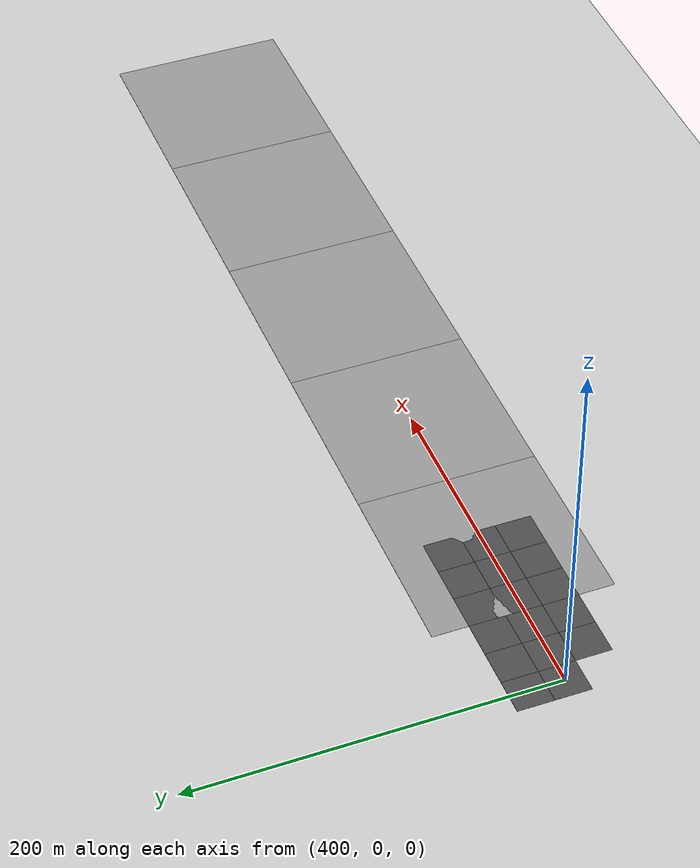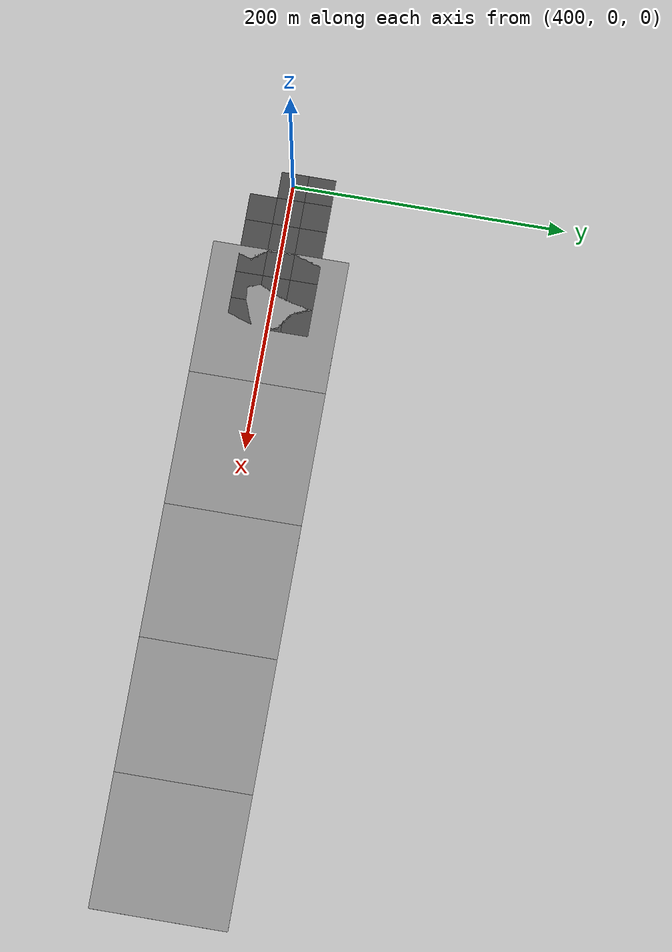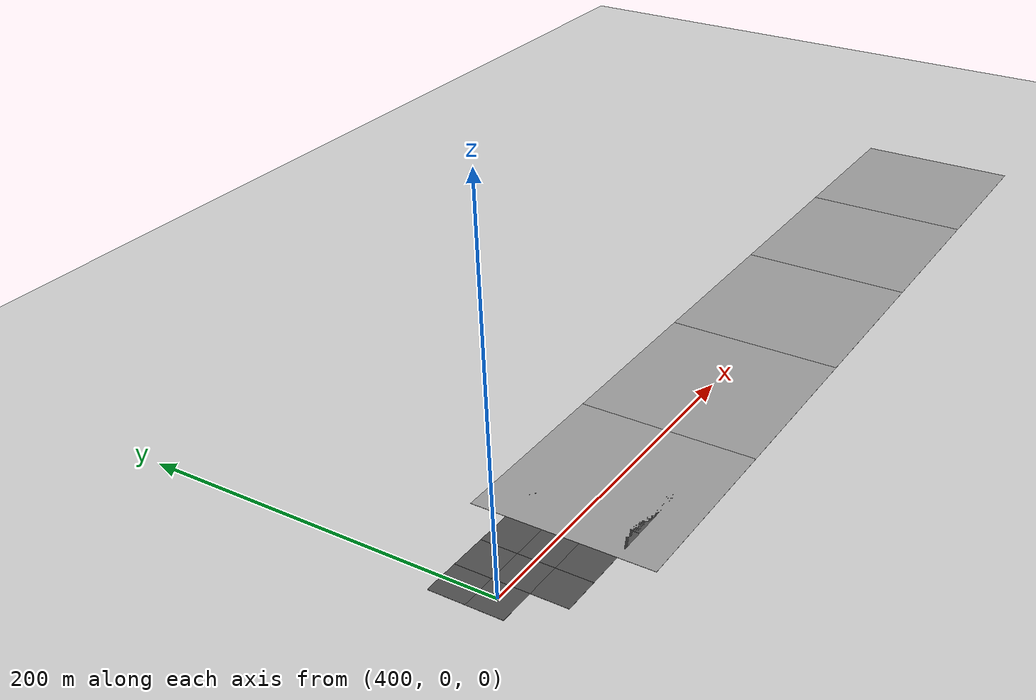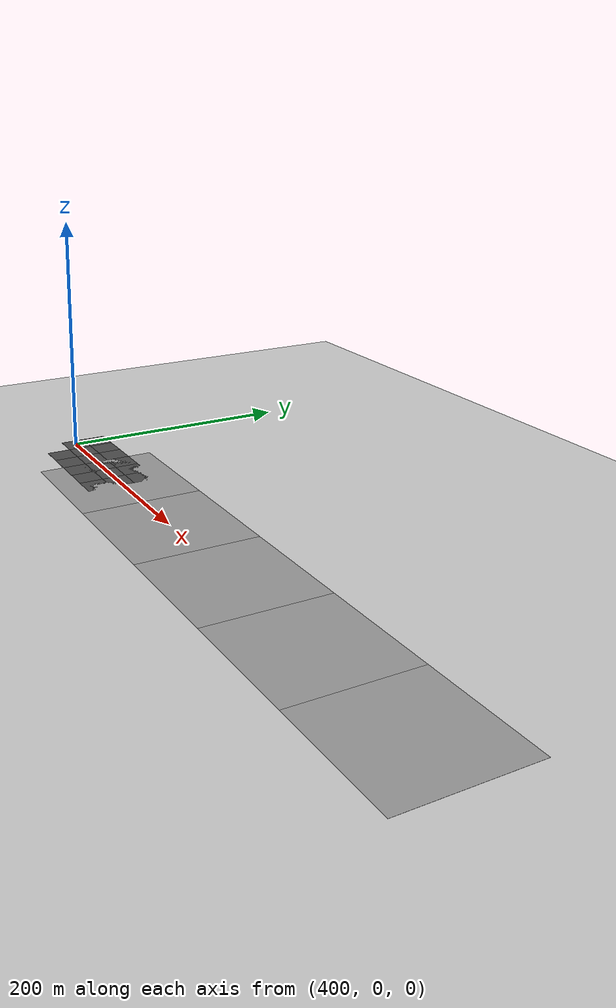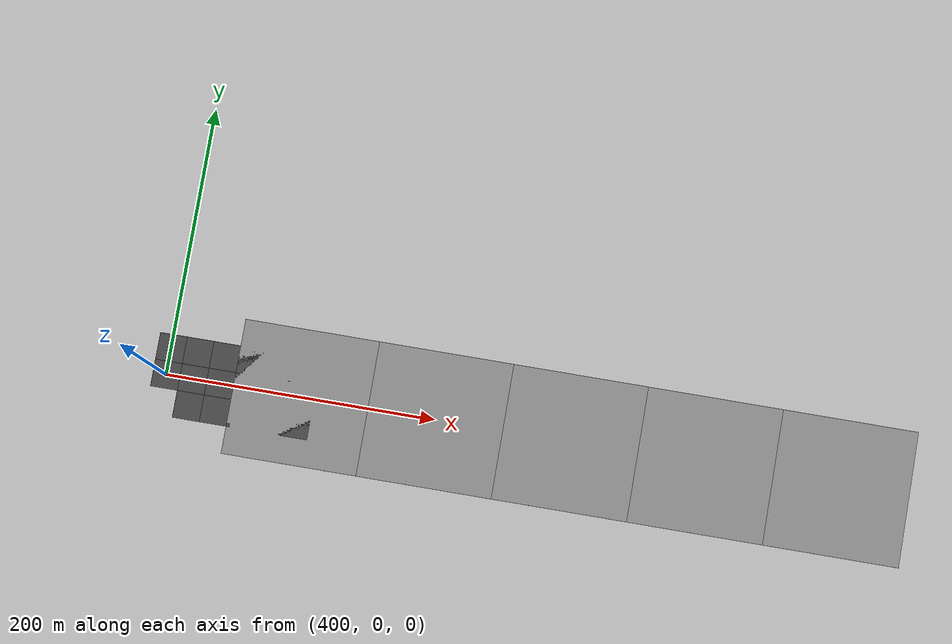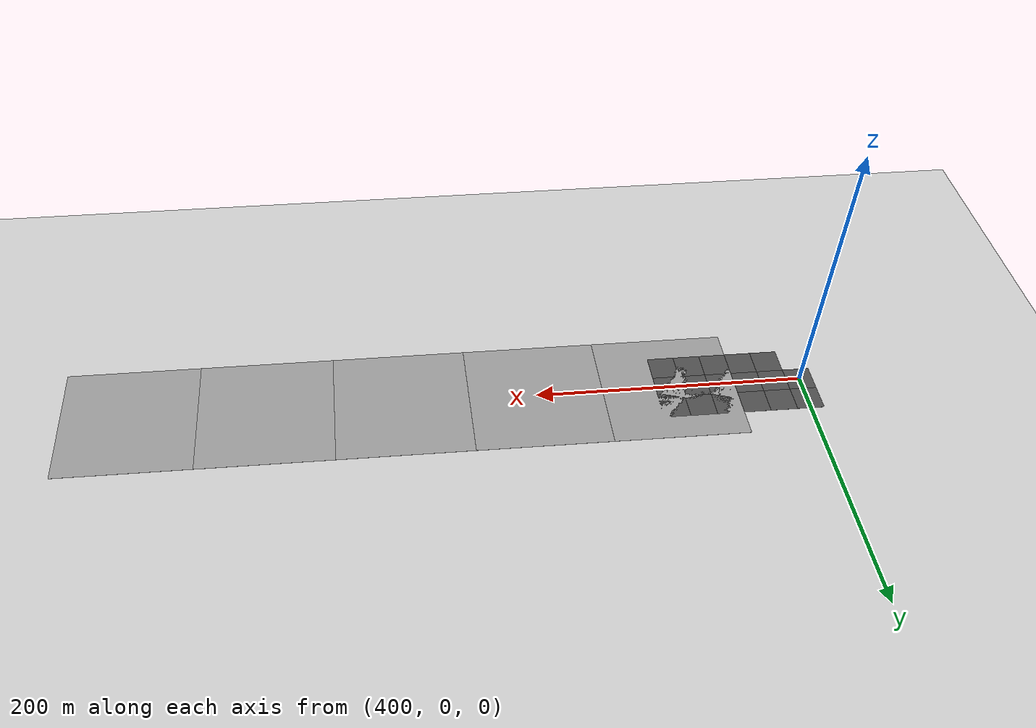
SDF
<sdf version="1.4">
 <world name="default">
  <model name="ground_plane">
   <static>1</static>
   <link name="link">
    <collision name="collision">
     <geometry><plane><normal>0 0 1</normal><size>100 100</size></plane></geometry>
     <surface><friction><ode><mu>100</mu><mu2>50</mu2></ode></friction></surface>
    </collision>
    <visual name="visual">
     <cast_shadows>0</cast_shadows>
     <geometry><plane><normal>0 0 1</normal><size>100 100</size></plane></geometry>
     <material>
      <script><uri>file://media/materials/scripts/gazebo.material</uri><name>Gazebo/Grey</name></script>
     </material>
    </visual>
    <velocity_decay><linear>0</linear><angular>0</angular></velocity_decay>
   </link>
  </model>
  <model name="ground_plane_4">
   <static>1</static>
   <link name="link">
    <collision name="collision">
     <geometry><plane><normal>0 0 1</normal><size>100 100</size></plane></geometry>
     <surface><friction><ode><mu>100</mu><mu2>50</mu2></ode></friction></surface>
    </collision>
    <visual name="visual">
     <cast_shadows>0</cast_shadows>
     <geometry><plane><normal>0 0 1</normal><size>100 100</size></plane></geometry>
     <material>
      <script><uri>file://media/materials/scripts/gazebo.material</uri><name>Gazebo/Grey</name></script>
     </material>
    </visual>
    <velocity_decay><linear>0</linear><angular>0</angular></velocity_decay>
   </link>
   <pose>500 0 0 0 -0 0</pose>
  </model>
  <model name="ground_plane_5">
   <static>1</static>
   <link name="link">
    <collision name="collision">
     <geometry><plane><normal>0 0 1</normal><size>100 100</size></plane></geometry>
     <surface><friction><ode><mu>100</mu><mu2>50</mu2></ode></friction></surface>
    </collision>
    <visual name="visual">
     <cast_shadows>0</cast_shadows>
     <geometry><plane><normal>0 0 1</normal><size>100 100</size></plane></geometry>
     <material>
      <script><uri>file://media/materials/scripts/gazebo.material</uri><name>Gazebo/Grey</name></script>
     </material>
    </visual>
    <velocity_decay><linear>0</linear><angular>0</angular></velocity_decay>
   </link>
   <pose>600 0 0 0 -0 0</pose>
  </model>
  <model name="ground_plane_6">
   <static>1</static>
   <link name="link">
    <collision name="collision">
     <geometry><plane><normal>0 0 1</normal><size>100 100</size></plane></geometry>
     <surface><friction><ode><mu>100</mu><mu2>50</mu2></ode></friction></surface>
    </collision>
    <visual name="visual">
     <cast_shadows>0</cast_shadows>
     <geometry><plane><normal>0 0 1</normal><size>100 100</size></plane></geometry>
     <material>
      <script><uri>file://media/materials/scripts/gazebo.material</uri><name>Gazebo/Grey</name></script>
     </material>
    </visual>
    <velocity_decay><linear>0</linear><angular>0</angular></velocity_decay>
   </link>
   <pose>700 0 0 0 -0 0</pose>
  </model>
  <model name="ground_plane_7">
   <static>1</static>
   <link name="link">
    <collision name="collision">
     <geometry><plane><normal>0 0 1</normal><size>100 100</size></plane></geometry>
     <surface><friction><ode><mu>100</mu><mu2>50</mu2></ode></friction></surface>
    </collision>
    <visual name="visual">
     <cast_shadows>0</cast_shadows>
     <geometry><plane><normal>0 0 1</normal><size>100 100</size></plane></geometry>
     <material>
      <script><uri>file://media/materials/scripts/gazebo.material</uri><name>Gazebo/Grey</name></script>
     </material>
    </visual>
    <velocity_decay><linear>0</linear><angular>0</angular></velocity_decay>
   </link>
   <pose>800 0 0 0 -0 0</pose>
  </model>
  <model name="ground_plane_8">
   <static>1</static>
   <link name="link">
    <collision name="collision">
     <geometry><plane><normal>0 0 1</normal><size>100 100</size></plane></geometry>
     <surface><friction><ode><mu>100</mu><mu2>50</mu2></ode></friction></surface>
    </collision>
    <visual name="visual">
     <cast_shadows>0</cast_shadows>
     <geometry><plane><normal>0 0 1</normal><size>100 100</size></plane></geometry>
     <material>
      <script><uri>file://media/materials/scripts/gazebo.material</uri><name>Gazebo/Grey</name></script>
     </material>
    </visual>
    <velocity_decay><linear>0</linear><angular>0</angular></velocity_decay>
   </link>
   <pose>900 0 0 0 -0 0</pose>
  </model>
  <model name="asphalt_plane_29">
   <static>1</static>
   <link name="link">
    <collision name="collision"><geometry><box><size>20 20 0.1</size></box></geometry></collision>
    <visual name="visual">
     <cast_shadows>0</cast_shadows>
     <geometry><box><size>20 20 0.1</size></box></geometry>
     <material>
      <script>
       <uri>model://asphalt_plane/materials/scripts</uri>
       <uri>model://asphalt_plane/materials/textures</uri>
       <name>vrc/asphalt</name>
      </script>
     </material>
    </visual>
    <velocity_decay><linear>0</linear><angular>0</angular></velocity_decay>
   </link>
   <pose>400 0 0 0 -0 0</pose>
  </model>
  <model name="asphalt_plane_30">
   <static>1</static>
   <link name="link">
    <collision name="collision"><geometry><box><size>20 20 0.1</size></box></geometry></collision>
    <visual name="visual">
     <cast_shadows>0</cast_shadows>
     <geometry><box><size>20 20 0.1</size></box></geometry>
     <material>
      <script>
       <uri>model://asphalt_plane/materials/scripts</uri>
       <uri>model://asphalt_plane/materials/textures</uri>
       <name>vrc/asphalt</name>
      </script>
     </material>
    </visual>
    <velocity_decay><linear>0</linear><angular>0</angular></velocity_decay>
   </link>
   <pose>400 20 0 0 -0 0</pose>
  </model>
  <model name="asphalt_plane_31">
   <static>1</static>
   <link name="link">
    <collision name="collision"><geometry><box><size>20 20 0.1</size></box></geometry></collision>
    <visual name="visual">
     <cast_shadows>0</cast_shadows>
     <geometry><box><size>20 20 0.1</size></box></geometry>
     <material>
      <script>
       <uri>model://asphalt_plane/materials/scripts</uri>
       <uri>model://asphalt_plane/materials/textures</uri>
       <name>vrc/asphalt</name>
      </script>
     </material>
    </visual>
    <velocity_decay><linear>0</linear><angular>0</angular></velocity_decay>
   </link>
   <pose>420 -20 0 0 -0 0</pose>
  </model>
  <model name="asphalt_plane_32">
   <static>1</static>
   <link name="link">
    <collision name="collision"><geometry><box><size>20 20 0.1</size></box></geometry></collision>
    <visual name="visual">
     <cast_shadows>0</cast_shadows>
     <geometry><box><size>20 20 0.1</size></box></geometry>
     <material>
      <script>
       <uri>model://asphalt_plane/materials/scripts</uri>
       <uri>model://asphalt_plane/materials/textures</uri>
       <name>vrc/asphalt</name>
      </script>
     </material>
    </visual>
    <velocity_decay><linear>0</linear><angular>0</angular></velocity_decay>
   </link>
   <pose>420 0 0 0 -0 0</pose>
  </model>
  <model name="asphalt_plane_33">
   <static>1</static>
   <link name="link">
    <collision name="collision"><geometry><box><size>20 20 0.1</size></box></geometry></collision>
    <visual name="visual">
     <cast_shadows>0</cast_shadows>
     <geometry><box><size>20 20 0.1</size></box></geometry>
     <material>
      <script>
       <uri>model://asphalt_plane/materials/scripts</uri>
       <uri>model://asphalt_plane/materials/textures</uri>
       <name>vrc/asphalt</name>
      </script>
     </material>
    </visual>
    <velocity_decay><linear>0</linear><angular>0</angular></velocity_decay>
   </link>
   <pose>420 20 0 0 -0 0</pose>
  </model>
  <model name="asphalt_plane_34">
   <static>1</static>
   <link name="link">
    <collision name="collision"><geometry><box><size>20 20 0.1</size></box></geometry></collision>
    <visual name="visual">
     <cast_shadows>0</cast_shadows>
     <geometry><box><size>20 20 0.1</size></box></geometry>
     <material>
      <script>
       <uri>model://asphalt_plane/materials/scripts</uri>
       <uri>model://asphalt_plane/materials/textures</uri>
       <name>vrc/asphalt</name>
      </script>
     </material>
    </visual>
    <velocity_decay><linear>0</linear><angular>0</angular></velocity_decay>
   </link>
   <pose>440 -20 0 0 -0 0</pose>
  </model>
  <model name="asphalt_plane_35">
   <static>1</static>
   <link name="link">
    <collision name="collision"><geometry><box><size>20 20 0.1</size></box></geometry></collision>
    <visual name="visual">
     <cast_shadows>0</cast_shadows>
     <geometry><box><size>20 20 0.1</size></box></geometry>
     <material>
      <script>
       <uri>model://asphalt_plane/materials/scripts</uri>
       <uri>model://asphalt_plane/materials/textures</uri>
       <name>vrc/asphalt</name>
      </script>
     </material>
    </visual>
    <velocity_decay><linear>0</linear><angular>0</angular></velocity_decay>
   </link>
   <pose>440 0 0 0 -0 0</pose>
  </model>
  <model name="asphalt_plane_36">
   <static>1</static>
   <link name="link">
    <collision name="collision"><geometry><box><size>20 20 0.1</size></box></geometry></collision>
    <visual name="visual">
     <cast_shadows>0</cast_shadows>
     <geometry><box><size>20 20 0.1</size></box></geometry>
     <material>
      <script>
       <uri>model://asphalt_plane/materials/scripts</uri>
       <uri>model://asphalt_plane/materials/textures</uri>
       <name>vrc/asphalt</name>
      </script>
     </material>
    </visual>
    <velocity_decay><linear>0</linear><angular>0</angular></velocity_decay>
   </link>
   <pose>440 20 0 0 -0 0</pose>
  </model>
  <model name="asphalt_plane_39">
   <static>1</static>
   <link name="link">
    <collision name="collision"><geometry><box><size>20 20 0.1</size></box></geometry></collision>
    <visual name="visual">
     <cast_shadows>0</cast_shadows>
     <geometry><box><size>20 20 0.1</size></box></geometry>
     <material>
      <script>
       <uri>model://asphalt_plane/materials/scripts</uri>
       <uri>model://asphalt_plane/materials/textures</uri>
       <name>vrc/asphalt</name>
      </script>
     </material>
    </visual>
    <velocity_decay><linear>0</linear><angular>0</angular></velocity_decay>
   </link>
   <pose>460 -20 0 0 -0 0</pose>
  </model>
  <model name="asphalt_plane_40">
   <static>1</static>
   <link name="link">
    <collision name="collision"><geometry><box><size>20 20 0.1</size></box></geometry></collision>
    <visual name="visual">
     <cast_shadows>0</cast_shadows>
     <geometry><box><size>20 20 0.1</size></box></geometry>
     <material>
      <script>
       <uri>model://asphalt_plane/materials/scripts</uri>
       <uri>model://asphalt_plane/materials/textures</uri>
       <name>vrc/asphalt</name>
      </script>
     </material>
    </visual>
    <velocity_decay><linear>0</linear><angular>0</angular></velocity_decay>
   </link>
   <pose>460 0 0 0 -0 0</pose>
  </model>
  <model name="asphalt_plane_41">
   <static>1</static>
   <link name="link">
    <collision name="collision"><geometry><box><size>20 20 0.1</size></box></geometry></collision>
    <visual name="visual">
     <cast_shadows>0</cast_shadows>
     <geometry><box><size>20 20 0.1</size></box></geometry>
     <material>
      <script>
       <uri>model://asphalt_plane/materials/scripts</uri>
       <uri>model://asphalt_plane/materials/textures</uri>
       <name>vrc/asphalt</name>
      </script>
     </material>
    </visual>
    <velocity_decay><linear>0</linear><angular>0</angular></velocity_decay>
   </link>
   <pose>460 20 0 0 -0 0</pose>
  </model>
  <model name="asphalt_plane_42">
   <static>1</static>
   <link name="link">
    <collision name="collision"><geometry><box><size>20 20 0.1</size></box></geometry></collision>
    <visual name="visual">
     <cast_shadows>0</cast_shadows>
     <geometry><box><size>20 20 0.1</size></box></geometry>
     <material>
      <script>
       <uri>model://asphalt_plane/materials/scripts</uri>
       <uri>model://asphalt_plane/materials/textures</uri>
       <name>vrc/asphalt</name>
      </script>
     </material>
    </visual>
    <velocity_decay><linear>0</linear><angular>0</angular></velocity_decay>
   </link>
   <pose>480 20 0 0 -0 0</pose>
  </model>
  <model name="asphalt_plane_43">
   <static>1</static>
   <link name="link">
    <collision name="collision"><geometry><box><size>20 20 0.1</size></box></geometry></collision>
    <visual name="visual">
     <cast_shadows>0</cast_shadows>
     <geometry><box><size>20 20 0.1</size></box></geometry>
     <material>
      <script>
       <uri>model://asphalt_plane/materials/scripts</uri>
       <uri>model://asphalt_plane/materials/textures</uri>
       <name>vrc/asphalt</name>
      </script>
     </material>
    </visual>
    <velocity_decay><linear>0</linear><angular>0</angular></velocity_decay>
   </link>
   <pose>480 0 0 0 -0 0</pose>
  </model>
  <model name="asphalt_plane_44">
   <static>1</static>
   <link name="link">
    <collision name="collision"><geometry><box><size>20 20 0.1</size></box></geometry></collision>
    <visual name="visual">
     <cast_shadows>0</cast_shadows>
     <geometry><box><size>20 20 0.1</size></box></geometry>
     <material>
      <script>
       <uri>model://asphalt_plane/materials/scripts</uri>
       <uri>model://asphalt_plane/materials/textures</uri>
       <name>vrc/asphalt</name>
      </script>
     </material>
    </visual>
    <velocity_decay><linear>0</linear><angular>0</angular></velocity_decay>
   </link>
   <pose>480 -20 0 0 -0 0</pose>
  </model>
  <model name="asphalt_plane_45">
   <static>1</static>
   <link name="link">
    <collision name="collision"><geometry><box><size>20 20 0.1</size></box></geometry></collision>
    <visual name="visual">
     <cast_shadows>0</cast_shadows>
     <geometry><box><size>20 20 0.1</size></box></geometry>
     <material>
      <script>
       <uri>model://asphalt_plane/materials/scripts</uri>
       <uri>model://asphalt_plane/materials/textures</uri>
       <name>vrc/asphalt</name>
      </script>
     </material>
    </visual>
    <velocity_decay><linear>0</linear><angular>0</angular></velocity_decay>
   </link>
   <pose>500 -20 0 0 -0 0</pose>
  </model>
  <model name="asphalt_plane_46">
   <static>1</static>
   <link name="link">
    <collision name="collision"><geometry><box><size>20 20 0.1</size></box></geometry></collision>
    <visual name="visual">
     <cast_shadows>0</cast_shadows>
     <geometry><box><size>20 20 0.1</size></box></geometry>
     <material>
      <script>
       <uri>model://asphalt_plane/materials/scripts</uri>
       <uri>model://asphalt_plane/materials/textures</uri>
       <name>vrc/asphalt</name>
      </script>
     </material>
    </visual>
    <velocity_decay><linear>0</linear><angular>0</angular></velocity_decay>
   </link>
   <pose>500 0 0 0 -0 0</pose>
  </model>
  <model name="asphalt_plane_47">
   <static>1</static>
   <link name="link">
    <collision name="collision"><geometry><box><size>20 20 0.1</size></box></geometry></collision>
    <visual name="visual">
     <cast_shadows>0</cast_shadows>
     <geometry><box><size>20 20 0.1</size></box></geometry>
     <material>
      <script>
       <uri>model://asphalt_plane/materials/scripts</uri>
       <uri>model://asphalt_plane/materials/textures</uri>
       <name>vrc/asphalt</name>
      </script>
     </material>
    </visual>
    <velocity_decay><linear>0</linear><angular>0</angular></velocity_decay>
   </link>
   <pose>500 20 0 0 -0 0</pose>
  </model>
 </world>
</sdf>
